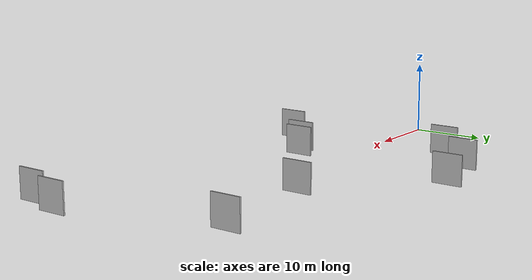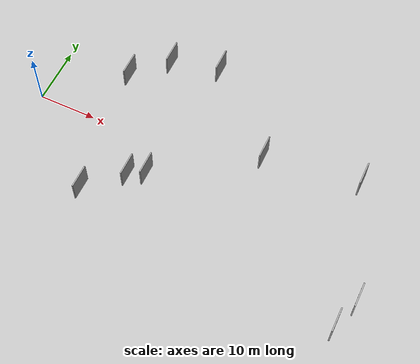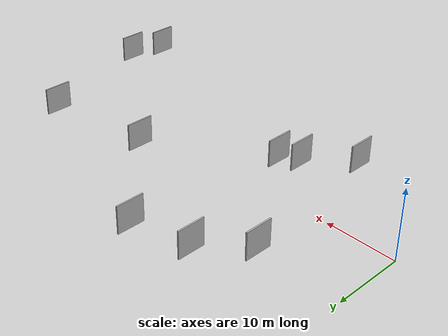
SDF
<sdf version="1.6">
 <world name="default">
  <scene>
   <sky><clouds><speed>12</speed></clouds></sky>
   <ambient>0.4 0.4 0.4 1</ambient>
   <background>0.7 0.7 0.7 1</background>
   <shadows>1</shadows>
  </scene>
  <gravity>0 0 -9.8066</gravity>
  <magnetic_field>6e-06 2.3e-05 -4.2e-05</magnetic_field>
  <physics default="0" name="default_physics" type="ode">
   <ode>
    <solver>
     <type>quick</type>
     <iters>10</iters>
     <sor>1.0</sor>
     <use_dynamic_moi_rescaling>0</use_dynamic_moi_rescaling>
    </solver>
    <constraints>
     <cfm>0</cfm>
     <erp>0.2</erp>
     <contact_max_correcting_vel>100</contact_max_correcting_vel>
     <contact_surface_layer>0.001</contact_surface_layer>
    </constraints>
   </ode>
   <max_step_size>0.004</max_step_size>
   <real_time_factor>1</real_time_factor>
   <real_time_update_rate>250</real_time_update_rate>
  </physics>
  <light name="sun" type="directional">
   <pose>0 0 10 0 0 0</pose>
   <diffuse>0.8 0.8 0.8 1</diffuse>
   <specular>0.2 0.2 0.2 1</specular>
   <attenuation>
    <range>1000</range>
    <constant>0.9</constant>
    <linear>0.01</linear>
    <quadratic>0.001</quadratic>
   </attenuation>
   <direction>-0.5 0.1 -0.9</direction>
  </light>
  <model name="grey_wall_1">
   <static>1</static>
   <pose>17.1360 15.6598 0.0 0.000000 0.000000 1.570796</pose>
   <link name="link">
    <pose>0 0 2.00 0 0 0</pose>
    <collision name="collision"><geometry><box><size>4.00 0.2 4.00</size></box></geometry></collision>
    <visual name="visual">
     <cast_shadows>0</cast_shadows>
     <geometry><box><size>4.00 0.2 4.00</size></box></geometry>
     <material>
      <script>
       <uri>model://HANNAS_wall/materials/scripts</uri>
       <uri>model://HANNAS_wall/materials/textures</uri>
       <name>vrc/HANNAS_wall</name>
      </script>
     </material>
    </visual>
   </link>
  </model>
  <model name="grey_wall_2">
   <static>1</static>
   <pose>61.8236 -12.5777 0.0 0.000000 0.000000 1.570796</pose>
   <link name="link">
    <pose>0 0 2.00 0 0 0</pose>
    <collision name="collision"><geometry><box><size>4.00 0.2 4.00</size></box></geometry></collision>
    <visual name="visual">
     <cast_shadows>0</cast_shadows>
     <geometry><box><size>4.00 0.2 4.00</size></box></geometry>
     <material>
      <script>
       <uri>model://HANNAS_wall/materials/scripts</uri>
       <uri>model://HANNAS_wall/materials/textures</uri>
       <name>vrc/HANNAS_wall</name>
      </script>
     </material>
    </visual>
   </link>
  </model>
  <model name="grey_wall_3">
   <static>1</static>
   <pose>23.2174 -6.0280 0.0 0.000000 0.000000 1.570796</pose>
   <link name="link">
    <pose>0 0 2.00 0 0 0</pose>
    <collision name="collision"><geometry><box><size>4.00 0.2 4.00</size></box></geometry></collision>
    <visual name="visual">
     <cast_shadows>0</cast_shadows>
     <geometry><box><size>4.00 0.2 4.00</size></box></geometry>
     <material>
      <script>
       <uri>model://HANNAS_wall/materials/scripts</uri>
       <uri>model://HANNAS_wall/materials/textures</uri>
       <name>vrc/HANNAS_wall</name>
      </script>
     </material>
    </visual>
   </link>
  </model>
  <model name="grey_wall_4">
   <static>1</static>
   <pose>14.8592 -12.8039 0.0 0.000000 0.000000 1.570796</pose>
   <link name="link">
    <pose>0 0 2.00 0 0 0</pose>
    <collision name="collision"><geometry><box><size>4.00 0.2 4.00</size></box></geometry></collision>
    <visual name="visual">
     <cast_shadows>0</cast_shadows>
     <geometry><box><size>4.00 0.2 4.00</size></box></geometry>
     <material>
      <script>
       <uri>model://HANNAS_wall/materials/scripts</uri>
       <uri>model://HANNAS_wall/materials/textures</uri>
       <name>vrc/HANNAS_wall</name>
      </script>
     </material>
    </visual>
   </link>
  </model>
  <model name="grey_wall_5">
   <static>1</static>
   <pose>55.3569 7.0488 0.0 0.000000 0.000000 1.570796</pose>
   <link name="link">
    <pose>0 0 2.00 0 0 0</pose>
    <collision name="collision"><geometry><box><size>4.00 0.2 4.00</size></box></geometry></collision>
    <visual name="visual">
     <cast_shadows>0</cast_shadows>
     <geometry><box><size>4.00 0.2 4.00</size></box></geometry>
     <material>
      <script>
       <uri>model://HANNAS_wall/materials/scripts</uri>
       <uri>model://HANNAS_wall/materials/textures</uri>
       <name>vrc/HANNAS_wall</name>
      </script>
     </material>
    </visual>
   </link>
  </model>
  <model name="grey_wall_6">
   <static>1</static>
   <pose>39.1500 4.8524 0.0 0.000000 0.000000 1.570796</pose>
   <link name="link">
    <pose>0 0 2.00 0 0 0</pose>
    <collision name="collision"><geometry><box><size>4.00 0.2 4.00</size></box></geometry></collision>
    <visual name="visual">
     <cast_shadows>0</cast_shadows>
     <geometry><box><size>4.00 0.2 4.00</size></box></geometry>
     <material>
      <script>
       <uri>model://HANNAS_wall/materials/scripts</uri>
       <uri>model://HANNAS_wall/materials/textures</uri>
       <name>vrc/HANNAS_wall</name>
      </script>
     </material>
    </visual>
   </link>
  </model>
  <model name="grey_wall_7">
   <static>1</static>
   <pose>20.5715 -7.5127 0.0 0.000000 0.000000 1.570796</pose>
   <link name="link">
    <pose>0 0 2.00 0 0 0</pose>
    <collision name="collision"><geometry><box><size>4.00 0.2 4.00</size></box></geometry></collision>
    <visual name="visual">
     <cast_shadows>0</cast_shadows>
     <geometry><box><size>4.00 0.2 4.00</size></box></geometry>
     <material>
      <script>
       <uri>model://HANNAS_wall/materials/scripts</uri>
       <uri>model://HANNAS_wall/materials/textures</uri>
       <name>vrc/HANNAS_wall</name>
      </script>
     </material>
    </visual>
   </link>
  </model>
  <model name="grey_wall_8">
   <static>1</static>
   <pose>60.1986 -17.6364 0.0 0.000000 0.000000 1.570796</pose>
   <link name="link">
    <pose>0 0 2.00 0 0 0</pose>
    <collision name="collision"><geometry><box><size>4.00 0.2 4.00</size></box></geometry></collision>
    <visual name="visual">
     <cast_shadows>0</cast_shadows>
     <geometry><box><size>4.00 0.2 4.00</size></box></geometry>
     <material>
      <script>
       <uri>model://HANNAS_wall/materials/scripts</uri>
       <uri>model://HANNAS_wall/materials/textures</uri>
       <name>vrc/HANNAS_wall</name>
      </script>
     </material>
    </visual>
   </link>
  </model>
  <model name="grey_wall_9">
   <static>1</static>
   <pose>25.5363 17.6996 0.0 0.000000 0.000000 1.570796</pose>
   <link name="link">
    <pose>0 0 2.00 0 0 0</pose>
    <collision name="collision"><geometry><box><size>4.00 0.2 4.00</size></box></geometry></collision>
    <visual name="visual">
     <cast_shadows>0</cast_shadows>
     <geometry><box><size>4.00 0.2 4.00</size></box></geometry>
     <material>
      <script>
       <uri>model://HANNAS_wall/materials/scripts</uri>
       <uri>model://HANNAS_wall/materials/textures</uri>
       <name>vrc/HANNAS_wall</name>
      </script>
     </material>
    </visual>
   </link>
  </model>
  <model name="grey_wall_10">
   <static>1</static>
   <pose>11.7261 10.2574 0.0 0.000000 0.000000 1.570796</pose>
   <link name="link">
    <pose>0 0 2.00 0 0 0</pose>
    <collision name="collision"><geometry><box><size>4.00 0.2 4.00</size></box></geometry></collision>
    <visual name="visual">
     <cast_shadows>0</cast_shadows>
     <geometry><box><size>4.00 0.2 4.00</size></box></geometry>
     <material>
      <script>
       <uri>model://HANNAS_wall/materials/scripts</uri>
       <uri>model://HANNAS_wall/materials/textures</uri>
       <name>vrc/HANNAS_wall</name>
      </script>
     </material>
    </visual>
   </link>
  </model>
 </world>
</sdf>
